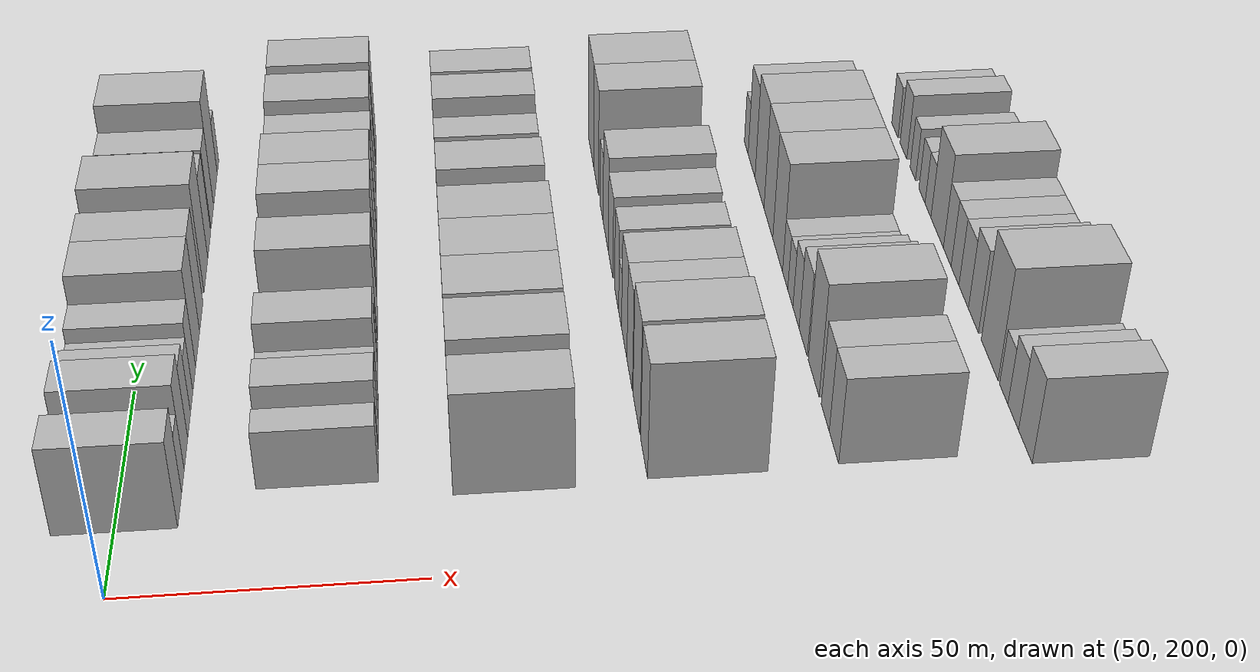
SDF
<sdf version="1.6">
 <world name="default">
  <model name="building_81">
   <static>1</static>
   <pose>50.0000 218.9904 0 0.000000 0.000000 0.000000</pose>
   <link name="link">
    <pose>0 0 9.00 0 0 0</pose>
    <collision name="collision"><geometry><box><size>20.0000 8.2900 18.0000</size></box></geometry></collision>
    <visual name="visual">
     <cast_shadows>0</cast_shadows>
     <geometry><box><size>20.0000 8.2900 18.0000</size></box></geometry>
     <material>
      <script>
       <uri>model://HANNAS_wall/materials/scripts</uri>
       <uri>model://HANNAS_wall/materials/textures</uri>
       <name>vrc/HANNAS_wall</name>
      </script>
     </material>
    </visual>
   </link>
  </model>
  <model name="building_82">
   <static>1</static>
   <pose>50.0000 225.9646 0 0.000000 0.000000 0.000000</pose>
   <link name="link">
    <pose>0 0 6.00 0 0 0</pose>
    <collision name="collision"><geometry><box><size>20.0000 5.6583 12.0000</size></box></geometry></collision>
    <visual name="visual">
     <cast_shadows>0</cast_shadows>
     <geometry><box><size>20.0000 5.6583 12.0000</size></box></geometry>
     <material>
      <script>
       <uri>model://HANNAS_wall/materials/scripts</uri>
       <uri>model://HANNAS_wall/materials/textures</uri>
       <name>vrc/HANNAS_wall</name>
      </script>
     </material>
    </visual>
   </link>
  </model>
  <model name="building_83">
   <static>1</static>
   <pose>50.0000 232.8158 0 0.000000 0.000000 0.000000</pose>
   <link name="link">
    <pose>0 0 9.00 0 0 0</pose>
    <collision name="collision"><geometry><box><size>20.0000 8.0442 18.0000</size></box></geometry></collision>
    <visual name="visual">
     <cast_shadows>0</cast_shadows>
     <geometry><box><size>20.0000 8.0442 18.0000</size></box></geometry>
     <material>
      <script>
       <uri>model://HANNAS_wall/materials/scripts</uri>
       <uri>model://HANNAS_wall/materials/textures</uri>
       <name>vrc/HANNAS_wall</name>
      </script>
     </material>
    </visual>
   </link>
  </model>
  <model name="building_84">
   <static>1</static>
   <pose>50.0000 240.1284 0 0.000000 0.000000 0.000000</pose>
   <link name="link">
    <pose>0 0 7.50 0 0 0</pose>
    <collision name="collision"><geometry><box><size>20.0000 6.5811 15.0000</size></box></geometry></collision>
    <visual name="visual">
     <cast_shadows>0</cast_shadows>
     <geometry><box><size>20.0000 6.5811 15.0000</size></box></geometry>
     <material>
      <script>
       <uri>model://HANNAS_wall/materials/scripts</uri>
       <uri>model://HANNAS_wall/materials/textures</uri>
       <name>vrc/HANNAS_wall</name>
      </script>
     </material>
    </visual>
   </link>
  </model>
  <model name="building_85">
   <static>1</static>
   <pose>50.0000 246.2718 0 0.000000 0.000000 0.000000</pose>
   <link name="link">
    <pose>0 0 6.00 0 0 0</pose>
    <collision name="collision"><geometry><box><size>20.0000 5.7056 12.0000</size></box></geometry></collision>
    <visual name="visual">
     <cast_shadows>0</cast_shadows>
     <geometry><box><size>20.0000 5.7056 12.0000</size></box></geometry>
     <material>
      <script>
       <uri>model://HANNAS_wall/materials/scripts</uri>
       <uri>model://HANNAS_wall/materials/textures</uri>
       <name>vrc/HANNAS_wall</name>
      </script>
     </material>
    </visual>
   </link>
  </model>
  <model name="building_86">
   <static>1</static>
   <pose>50.0000 252.6050 0 0.000000 0.000000 0.000000</pose>
   <link name="link">
    <pose>0 0 7.50 0 0 0</pose>
    <collision name="collision"><geometry><box><size>20.0000 6.9608 15.0000</size></box></geometry></collision>
    <visual name="visual">
     <cast_shadows>0</cast_shadows>
     <geometry><box><size>20.0000 6.9608 15.0000</size></box></geometry>
     <material>
      <script>
       <uri>model://HANNAS_wall/materials/scripts</uri>
       <uri>model://HANNAS_wall/materials/textures</uri>
       <name>vrc/HANNAS_wall</name>
      </script>
     </material>
    </visual>
   </link>
  </model>
  <model name="building_87">
   <static>1</static>
   <pose>50.0000 261.2287 0 0.000000 0.000000 0.000000</pose>
   <link name="link">
    <pose>0 0 10.50 0 0 0</pose>
    <collision name="collision"><geometry><box><size>20.0000 10.2868 21.0000</size></box></geometry></collision>
    <visual name="visual">
     <cast_shadows>0</cast_shadows>
     <geometry><box><size>20.0000 10.2868 21.0000</size></box></geometry>
     <material>
      <script>
       <uri>model://HANNAS_wall/materials/scripts</uri>
       <uri>model://HANNAS_wall/materials/textures</uri>
       <name>vrc/HANNAS_wall</name>
      </script>
     </material>
    </visual>
   </link>
  </model>
  <model name="building_88">
   <static>1</static>
   <pose>50.0000 270.7910 0 0.000000 0.000000 0.000000</pose>
   <link name="link">
    <pose>0 0 10.50 0 0 0</pose>
    <collision name="collision"><geometry><box><size>20.0000 8.8377 21.0000</size></box></geometry></collision>
    <visual name="visual">
     <cast_shadows>0</cast_shadows>
     <geometry><box><size>20.0000 8.8377 21.0000</size></box></geometry>
     <material>
      <script>
       <uri>model://HANNAS_wall/materials/scripts</uri>
       <uri>model://HANNAS_wall/materials/textures</uri>
       <name>vrc/HANNAS_wall</name>
      </script>
     </material>
    </visual>
   </link>
  </model>
  <model name="building_89">
   <static>1</static>
   <pose>50.0000 283.7605 0 0.000000 0.000000 0.000000</pose>
   <link name="link">
    <pose>0 0 12.00 0 0 0</pose>
    <collision name="collision"><geometry><box><size>20.0000 11.1014 24.0000</size></box></geometry></collision>
    <visual name="visual">
     <cast_shadows>0</cast_shadows>
     <geometry><box><size>20.0000 11.1014 24.0000</size></box></geometry>
     <material>
      <script>
       <uri>model://HANNAS_wall/materials/scripts</uri>
       <uri>model://HANNAS_wall/materials/textures</uri>
       <name>vrc/HANNAS_wall</name>
      </script>
     </material>
    </visual>
   </link>
  </model>
  <model name="building_90">
   <static>1</static>
   <pose>50.0000 293.6527 0 0.000000 0.000000 0.000000</pose>
   <link name="link">
    <pose>0 0 9.00 0 0 0</pose>
    <collision name="collision"><geometry><box><size>20.0000 8.6829 18.0000</size></box></geometry></collision>
    <visual name="visual">
     <cast_shadows>0</cast_shadows>
     <geometry><box><size>20.0000 8.6829 18.0000</size></box></geometry>
     <material>
      <script>
       <uri>model://HANNAS_wall/materials/scripts</uri>
       <uri>model://HANNAS_wall/materials/textures</uri>
       <name>vrc/HANNAS_wall</name>
      </script>
     </material>
    </visual>
   </link>
  </model>
  <model name="building_91">
   <static>1</static>
   <pose>50.0000 302.9979 0 0.000000 0.000000 0.000000</pose>
   <link name="link">
    <pose>0 0 9.00 0 0 0</pose>
    <collision name="collision"><geometry><box><size>20.0000 8.0076 18.0000</size></box></geometry></collision>
    <visual name="visual">
     <cast_shadows>0</cast_shadows>
     <geometry><box><size>20.0000 8.0076 18.0000</size></box></geometry>
     <material>
      <script>
       <uri>model://HANNAS_wall/materials/scripts</uri>
       <uri>model://HANNAS_wall/materials/textures</uri>
       <name>vrc/HANNAS_wall</name>
      </script>
     </material>
    </visual>
   </link>
  </model>
  <model name="building_92">
   <static>1</static>
   <pose>50.0000 312.8858 0 0.000000 0.000000 0.000000</pose>
   <link name="link">
    <pose>0 0 12.00 0 0 0</pose>
    <collision name="collision"><geometry><box><size>20.0000 11.7682 24.0000</size></box></geometry></collision>
    <visual name="visual">
     <cast_shadows>0</cast_shadows>
     <geometry><box><size>20.0000 11.7682 24.0000</size></box></geometry>
     <material>
      <script>
       <uri>model://HANNAS_wall/materials/scripts</uri>
       <uri>model://HANNAS_wall/materials/textures</uri>
       <name>vrc/HANNAS_wall</name>
      </script>
     </material>
    </visual>
   </link>
  </model>
  <model name="building_93">
   <static>1</static>
   <pose>50.0000 321.2370 0 0.000000 0.000000 0.000000</pose>
   <link name="link">
    <pose>0 0 6.00 0 0 0</pose>
    <collision name="collision"><geometry><box><size>20.0000 4.9343 12.0000</size></box></geometry></collision>
    <visual name="visual">
     <cast_shadows>0</cast_shadows>
     <geometry><box><size>20.0000 4.9343 12.0000</size></box></geometry>
     <material>
      <script>
       <uri>model://HANNAS_wall/materials/scripts</uri>
       <uri>model://HANNAS_wall/materials/textures</uri>
       <name>vrc/HANNAS_wall</name>
      </script>
     </material>
    </visual>
   </link>
  </model>
  <model name="building_204">
   <static>1</static>
   <pose>82.0000 225.9738 0 0.000000 0.000000 0.000000</pose>
   <link name="link">
    <pose>0 0 6.00 0 0 0</pose>
    <collision name="collision"><geometry><box><size>20.0000 5.9548 12.0000</size></box></geometry></collision>
    <visual name="visual">
     <cast_shadows>0</cast_shadows>
     <geometry><box><size>20.0000 5.9548 12.0000</size></box></geometry>
     <material>
      <script>
       <uri>model://HANNAS_wall/materials/scripts</uri>
       <uri>model://HANNAS_wall/materials/textures</uri>
       <name>vrc/HANNAS_wall</name>
      </script>
     </material>
    </visual>
   </link>
  </model>
  <model name="building_205">
   <static>1</static>
   <pose>82.0000 234.6231 0 0.000000 0.000000 0.000000</pose>
   <link name="link">
    <pose>0 0 7.50 0 0 0</pose>
    <collision name="collision"><geometry><box><size>20.0000 7.3438 15.0000</size></box></geometry></collision>
    <visual name="visual">
     <cast_shadows>0</cast_shadows>
     <geometry><box><size>20.0000 7.3438 15.0000</size></box></geometry>
     <material>
      <script>
       <uri>model://HANNAS_wall/materials/scripts</uri>
       <uri>model://HANNAS_wall/materials/textures</uri>
       <name>vrc/HANNAS_wall</name>
      </script>
     </material>
    </visual>
   </link>
  </model>
  <model name="building_206">
   <static>1</static>
   <pose>82.0000 241.0793 0 0.000000 0.000000 0.000000</pose>
   <link name="link">
    <pose>0 0 6.00 0 0 0</pose>
    <collision name="collision"><geometry><box><size>20.0000 5.5687 12.0000</size></box></geometry></collision>
    <visual name="visual">
     <cast_shadows>0</cast_shadows>
     <geometry><box><size>20.0000 5.5687 12.0000</size></box></geometry>
     <material>
      <script>
       <uri>model://HANNAS_wall/materials/scripts</uri>
       <uri>model://HANNAS_wall/materials/textures</uri>
       <name>vrc/HANNAS_wall</name>
      </script>
     </material>
    </visual>
   </link>
  </model>
  <model name="building_207">
   <static>1</static>
   <pose>82.0000 248.2876 0 0.000000 0.000000 0.000000</pose>
   <link name="link">
    <pose>0 0 9.00 0 0 0</pose>
    <collision name="collision"><geometry><box><size>20.0000 8.8478 18.0000</size></box></geometry></collision>
    <visual name="visual">
     <cast_shadows>0</cast_shadows>
     <geometry><box><size>20.0000 8.8478 18.0000</size></box></geometry>
     <material>
      <script>
       <uri>model://HANNAS_wall/materials/scripts</uri>
       <uri>model://HANNAS_wall/materials/textures</uri>
       <name>vrc/HANNAS_wall</name>
      </script>
     </material>
    </visual>
   </link>
  </model>
  <model name="building_208">
   <static>1</static>
   <pose>82.0000 256.2721 0 0.000000 0.000000 0.000000</pose>
   <link name="link">
    <pose>0 0 6.00 0 0 0</pose>
    <collision name="collision"><geometry><box><size>20.0000 5.1213 12.0000</size></box></geometry></collision>
    <visual name="visual">
     <cast_shadows>0</cast_shadows>
     <geometry><box><size>20.0000 5.1213 12.0000</size></box></geometry>
     <material>
      <script>
       <uri>model://HANNAS_wall/materials/scripts</uri>
       <uri>model://HANNAS_wall/materials/textures</uri>
       <name>vrc/HANNAS_wall</name>
      </script>
     </material>
    </visual>
   </link>
  </model>
  <model name="building_209">
   <static>1</static>
   <pose>82.0000 265.8972 0 0.000000 0.000000 0.000000</pose>
   <link name="link">
    <pose>0 0 10.50 0 0 0</pose>
    <collision name="collision"><geometry><box><size>20.0000 10.1289 21.0000</size></box></geometry></collision>
    <visual name="visual">
     <cast_shadows>0</cast_shadows>
     <geometry><box><size>20.0000 10.1289 21.0000</size></box></geometry>
     <material>
      <script>
       <uri>model://HANNAS_wall/materials/scripts</uri>
       <uri>model://HANNAS_wall/materials/textures</uri>
       <name>vrc/HANNAS_wall</name>
      </script>
     </material>
    </visual>
   </link>
  </model>
  <model name="building_210">
   <static>1</static>
   <pose>82.0000 278.8341 0 0.000000 0.000000 0.000000</pose>
   <link name="link">
    <pose>0 0 12.00 0 0 0</pose>
    <collision name="collision"><geometry><box><size>20.0000 9.7449 24.0000</size></box></geometry></collision>
    <visual name="visual">
     <cast_shadows>0</cast_shadows>
     <geometry><box><size>20.0000 9.7449 24.0000</size></box></geometry>
     <material>
      <script>
       <uri>model://HANNAS_wall/materials/scripts</uri>
       <uri>model://HANNAS_wall/materials/textures</uri>
       <name>vrc/HANNAS_wall</name>
      </script>
     </material>
    </visual>
   </link>
  </model>
  <model name="building_211">
   <static>1</static>
   <pose>82.0000 288.9552 0 0.000000 0.000000 0.000000</pose>
   <link name="link">
    <pose>0 0 12.00 0 0 0</pose>
    <collision name="collision"><geometry><box><size>20.0000 10.4972 24.0000</size></box></geometry></collision>
    <visual name="visual">
     <cast_shadows>0</cast_shadows>
     <geometry><box><size>20.0000 10.4972 24.0000</size></box></geometry>
     <material>
      <script>
       <uri>model://HANNAS_wall/materials/scripts</uri>
       <uri>model://HANNAS_wall/materials/textures</uri>
       <name>vrc/HANNAS_wall</name>
      </script>
     </material>
    </visual>
   </link>
  </model>
  <model name="building_212">
   <static>1</static>
   <pose>82.0000 300.4500 0 0.000000 0.000000 0.000000</pose>
   <link name="link">
    <pose>0 0 10.50 0 0 0</pose>
    <collision name="collision"><geometry><box><size>20.0000 10.4925 21.0000</size></box></geometry></collision>
    <visual name="visual">
     <cast_shadows>0</cast_shadows>
     <geometry><box><size>20.0000 10.4925 21.0000</size></box></geometry>
     <material>
      <script>
       <uri>model://HANNAS_wall/materials/scripts</uri>
       <uri>model://HANNAS_wall/materials/textures</uri>
       <name>vrc/HANNAS_wall</name>
      </script>
     </material>
    </visual>
   </link>
  </model>
  <model name="building_213">
   <static>1</static>
   <pose>82.0000 310.8779 0 0.000000 0.000000 0.000000</pose>
   <link name="link">
    <pose>0 0 12.00 0 0 0</pose>
    <collision name="collision"><geometry><box><size>20.0000 10.3632 24.0000</size></box></geometry></collision>
    <visual name="visual">
     <cast_shadows>0</cast_shadows>
     <geometry><box><size>20.0000 10.3632 24.0000</size></box></geometry>
     <material>
      <script>
       <uri>model://HANNAS_wall/materials/scripts</uri>
       <uri>model://HANNAS_wall/materials/textures</uri>
       <name>vrc/HANNAS_wall</name>
      </script>
     </material>
    </visual>
   </link>
  </model>
  <model name="building_214">
   <static>1</static>
   <pose>82.0000 324.3219 0 0.000000 0.000000 0.000000</pose>
   <link name="link">
    <pose>0 0 12.00 0 0 0</pose>
    <collision name="collision"><geometry><box><size>20.0000 10.5250 24.0000</size></box></geometry></collision>
    <visual name="visual">
     <cast_shadows>0</cast_shadows>
     <geometry><box><size>20.0000 10.5250 24.0000</size></box></geometry>
     <material>
      <script>
       <uri>model://HANNAS_wall/materials/scripts</uri>
       <uri>model://HANNAS_wall/materials/textures</uri>
       <name>vrc/HANNAS_wall</name>
      </script>
     </material>
    </visual>
   </link>
  </model>
  <model name="building_328">
   <static>1</static>
   <pose>114.0000 223.7755 0 0.000000 0.000000 0.000000</pose>
   <link name="link">
    <pose>0 0 10.50 0 0 0</pose>
    <collision name="collision"><geometry><box><size>20.0000 10.0920 21.0000</size></box></geometry></collision>
    <visual name="visual">
     <cast_shadows>0</cast_shadows>
     <geometry><box><size>20.0000 10.0920 21.0000</size></box></geometry>
     <material>
      <script>
       <uri>model://HANNAS_wall/materials/scripts</uri>
       <uri>model://HANNAS_wall/materials/textures</uri>
       <name>vrc/HANNAS_wall</name>
      </script>
     </material>
    </visual>
   </link>
  </model>
  <model name="building_329">
   <static>1</static>
   <pose>114.0000 234.5067 0 0.000000 0.000000 0.000000</pose>
   <link name="link">
    <pose>0 0 12.00 0 0 0</pose>
    <collision name="collision"><geometry><box><size>20.0000 11.3704 24.0000</size></box></geometry></collision>
    <visual name="visual">
     <cast_shadows>0</cast_shadows>
     <geometry><box><size>20.0000 11.3704 24.0000</size></box></geometry>
     <material>
      <script>
       <uri>model://HANNAS_wall/materials/scripts</uri>
       <uri>model://HANNAS_wall/materials/textures</uri>
       <name>vrc/HANNAS_wall</name>
      </script>
     </material>
    </visual>
   </link>
  </model>
  <model name="building_330">
   <static>1</static>
   <pose>114.0000 246.7036 0 0.000000 0.000000 0.000000</pose>
   <link name="link">
    <pose>0 0 12.00 0 0 0</pose>
    <collision name="collision"><geometry><box><size>20.0000 11.0233 24.0000</size></box></geometry></collision>
    <visual name="visual">
     <cast_shadows>0</cast_shadows>
     <geometry><box><size>20.0000 11.0233 24.0000</size></box></geometry>
     <material>
      <script>
       <uri>model://HANNAS_wall/materials/scripts</uri>
       <uri>model://HANNAS_wall/materials/textures</uri>
       <name>vrc/HANNAS_wall</name>
      </script>
     </material>
    </visual>
   </link>
  </model>
  <model name="building_331">
   <static>1</static>
   <pose>114.0000 257.8045 0 0.000000 0.000000 0.000000</pose>
   <link name="link">
    <pose>0 0 12.00 0 0 0</pose>
    <collision name="collision"><geometry><box><size>20.0000 11.1785 24.0000</size></box></geometry></collision>
    <visual name="visual">
     <cast_shadows>0</cast_shadows>
     <geometry><box><size>20.0000 11.1785 24.0000</size></box></geometry>
     <material>
      <script>
       <uri>model://HANNAS_wall/materials/scripts</uri>
       <uri>model://HANNAS_wall/materials/textures</uri>
       <name>vrc/HANNAS_wall</name>
      </script>
     </material>
    </visual>
   </link>
  </model>
  <model name="building_332">
   <static>1</static>
   <pose>114.0000 268.5747 0 0.000000 0.000000 0.000000</pose>
   <link name="link">
    <pose>0 0 12.00 0 0 0</pose>
    <collision name="collision"><geometry><box><size>20.0000 10.3620 24.0000</size></box></geometry></collision>
    <visual name="visual">
     <cast_shadows>0</cast_shadows>
     <geometry><box><size>20.0000 10.3620 24.0000</size></box></geometry>
     <material>
      <script>
       <uri>model://HANNAS_wall/materials/scripts</uri>
       <uri>model://HANNAS_wall/materials/textures</uri>
       <name>vrc/HANNAS_wall</name>
      </script>
     </material>
    </visual>
   </link>
  </model>
  <model name="building_333">
   <static>1</static>
   <pose>114.0000 280.1764 0 0.000000 0.000000 0.000000</pose>
   <link name="link">
    <pose>0 0 7.50 0 0 0</pose>
    <collision name="collision"><geometry><box><size>20.0000 6.8414 15.0000</size></box></geometry></collision>
    <visual name="visual">
     <cast_shadows>0</cast_shadows>
     <geometry><box><size>20.0000 6.8414 15.0000</size></box></geometry>
     <material>
      <script>
       <uri>model://HANNAS_wall/materials/scripts</uri>
       <uri>model://HANNAS_wall/materials/textures</uri>
       <name>vrc/HANNAS_wall</name>
      </script>
     </material>
    </visual>
   </link>
  </model>
  <model name="building_334">
   <static>1</static>
   <pose>114.0000 288.4696 0 0.000000 0.000000 0.000000</pose>
   <link name="link">
    <pose>0 0 10.50 0 0 0</pose>
    <collision name="collision"><geometry><box><size>20.0000 9.7451 21.0000</size></box></geometry></collision>
    <visual name="visual">
     <cast_shadows>0</cast_shadows>
     <geometry><box><size>20.0000 9.7451 21.0000</size></box></geometry>
     <material>
      <script>
       <uri>model://HANNAS_wall/materials/scripts</uri>
       <uri>model://HANNAS_wall/materials/textures</uri>
       <name>vrc/HANNAS_wall</name>
      </script>
     </material>
    </visual>
   </link>
  </model>
  <model name="building_335">
   <static>1</static>
   <pose>114.0000 296.4511 0 0.000000 0.000000 0.000000</pose>
   <link name="link">
    <pose>0 0 7.50 0 0 0</pose>
    <collision name="collision"><geometry><box><size>20.0000 6.2179 15.0000</size></box></geometry></collision>
    <visual name="visual">
     <cast_shadows>0</cast_shadows>
     <geometry><box><size>20.0000 6.2179 15.0000</size></box></geometry>
     <material>
      <script>
       <uri>model://HANNAS_wall/materials/scripts</uri>
       <uri>model://HANNAS_wall/materials/textures</uri>
       <name>vrc/HANNAS_wall</name>
      </script>
     </material>
    </visual>
   </link>
  </model>
  <model name="building_336">
   <static>1</static>
   <pose>114.0000 303.2554 0 0.000000 0.000000 0.000000</pose>
   <link name="link">
    <pose>0 0 9.00 0 0 0</pose>
    <collision name="collision"><geometry><box><size>20.0000 7.3907 18.0000</size></box></geometry></collision>
    <visual name="visual">
     <cast_shadows>0</cast_shadows>
     <geometry><box><size>20.0000 7.3907 18.0000</size></box></geometry>
     <material>
      <script>
       <uri>model://HANNAS_wall/materials/scripts</uri>
       <uri>model://HANNAS_wall/materials/textures</uri>
       <name>vrc/HANNAS_wall</name>
      </script>
     </material>
    </visual>
   </link>
  </model>
  <model name="building_337">
   <static>1</static>
   <pose>114.0000 313.5395 0 0.000000 0.000000 0.000000</pose>
   <link name="link">
    <pose>0 0 10.50 0 0 0</pose>
    <collision name="collision"><geometry><box><size>20.0000 9.1775 21.0000</size></box></geometry></collision>
    <visual name="visual">
     <cast_shadows>0</cast_shadows>
     <geometry><box><size>20.0000 9.1775 21.0000</size></box></geometry>
     <material>
      <script>
       <uri>model://HANNAS_wall/materials/scripts</uri>
       <uri>model://HANNAS_wall/materials/textures</uri>
       <name>vrc/HANNAS_wall</name>
      </script>
     </material>
    </visual>
   </link>
  </model>
  <model name="building_338">
   <static>1</static>
   <pose>114.0000 323.4626 0 0.000000 0.000000 0.000000</pose>
   <link name="link">
    <pose>0 0 10.50 0 0 0</pose>
    <collision name="collision"><geometry><box><size>20.0000 8.6687 21.0000</size></box></geometry></collision>
    <visual name="visual">
     <cast_shadows>0</cast_shadows>
     <geometry><box><size>20.0000 8.6687 21.0000</size></box></geometry>
     <material>
      <script>
       <uri>model://HANNAS_wall/materials/scripts</uri>
       <uri>model://HANNAS_wall/materials/textures</uri>
       <name>vrc/HANNAS_wall</name>
      </script>
     </material>
    </visual>
   </link>
  </model>
  <model name="building_449">
   <static>1</static>
   <pose>146.0000 224.8673 0 0.000000 0.000000 0.000000</pose>
   <link name="link">
    <pose>0 0 12.00 0 0 0</pose>
    <collision name="collision"><geometry><box><size>20.0000 10.1038 24.0000</size></box></geometry></collision>
    <visual name="visual">
     <cast_shadows>0</cast_shadows>
     <geometry><box><size>20.0000 10.1038 24.0000</size></box></geometry>
     <material>
      <script>
       <uri>model://HANNAS_wall/materials/scripts</uri>
       <uri>model://HANNAS_wall/materials/textures</uri>
       <name>vrc/HANNAS_wall</name>
      </script>
     </material>
    </visual>
   </link>
  </model>
  <model name="building_450">
   <static>1</static>
   <pose>146.0000 236.2912 0 0.000000 0.000000 0.000000</pose>
   <link name="link">
    <pose>0 0 12.00 0 0 0</pose>
    <collision name="collision"><geometry><box><size>20.0000 10.7440 24.0000</size></box></geometry></collision>
    <visual name="visual">
     <cast_shadows>0</cast_shadows>
     <geometry><box><size>20.0000 10.7440 24.0000</size></box></geometry>
     <material>
      <script>
       <uri>model://HANNAS_wall/materials/scripts</uri>
       <uri>model://HANNAS_wall/materials/textures</uri>
       <name>vrc/HANNAS_wall</name>
      </script>
     </material>
    </visual>
   </link>
  </model>
  <model name="building_451">
   <static>1</static>
   <pose>146.0000 247.0804 0 0.000000 0.000000 0.000000</pose>
   <link name="link">
    <pose>0 0 10.50 0 0 0</pose>
    <collision name="collision"><geometry><box><size>20.0000 8.8344 21.0000</size></box></geometry></collision>
    <visual name="visual">
     <cast_shadows>0</cast_shadows>
     <geometry><box><size>20.0000 8.8344 21.0000</size></box></geometry>
     <material>
      <script>
       <uri>model://HANNAS_wall/materials/scripts</uri>
       <uri>model://HANNAS_wall/materials/textures</uri>
       <name>vrc/HANNAS_wall</name>
      </script>
     </material>
    </visual>
   </link>
  </model>
  <model name="building_452">
   <static>1</static>
   <pose>146.0000 256.0365 0 0.000000 0.000000 0.000000</pose>
   <link name="link">
    <pose>0 0 10.50 0 0 0</pose>
    <collision name="collision"><geometry><box><size>20.0000 9.0777 21.0000</size></box></geometry></collision>
    <visual name="visual">
     <cast_shadows>0</cast_shadows>
     <geometry><box><size>20.0000 9.0777 21.0000</size></box></geometry>
     <material>
      <script>
       <uri>model://HANNAS_wall/materials/scripts</uri>
       <uri>model://HANNAS_wall/materials/textures</uri>
       <name>vrc/HANNAS_wall</name>
      </script>
     </material>
    </visual>
   </link>
  </model>
  <model name="building_453">
   <static>1</static>
   <pose>146.0000 263.1099 0 0.000000 0.000000 0.000000</pose>
   <link name="link">
    <pose>0 0 6.00 0 0 0</pose>
    <collision name="collision"><geometry><box><size>20.0000 5.0691 12.0000</size></box></geometry></collision>
    <visual name="visual">
     <cast_shadows>0</cast_shadows>
     <geometry><box><size>20.0000 5.0691 12.0000</size></box></geometry>
     <material>
      <script>
       <uri>model://HANNAS_wall/materials/scripts</uri>
       <uri>model://HANNAS_wall/materials/textures</uri>
       <name>vrc/HANNAS_wall</name>
      </script>
     </material>
    </visual>
   </link>
  </model>
  <model name="building_454">
   <static>1</static>
   <pose>146.0000 269.3470 0 0.000000 0.000000 0.000000</pose>
   <link name="link">
    <pose>0 0 9.00 0 0 0</pose>
    <collision name="collision"><geometry><box><size>20.0000 7.4052 18.0000</size></box></geometry></collision>
    <visual name="visual">
     <cast_shadows>0</cast_shadows>
     <geometry><box><size>20.0000 7.4052 18.0000</size></box></geometry>
     <material>
      <script>
       <uri>model://HANNAS_wall/materials/scripts</uri>
       <uri>model://HANNAS_wall/materials/textures</uri>
       <name>vrc/HANNAS_wall</name>
      </script>
     </material>
    </visual>
   </link>
  </model>
  <model name="building_455">
   <static>1</static>
   <pose>146.0000 280.3539 0 0.000000 0.000000 0.000000</pose>
   <link name="link">
    <pose>0 0 9.00 0 0 0</pose>
    <collision name="collision"><geometry><box><size>20.0000 8.6086 18.0000</size></box></geometry></collision>
    <visual name="visual">
     <cast_shadows>0</cast_shadows>
     <geometry><box><size>20.0000 8.6086 18.0000</size></box></geometry>
     <material>
      <script>
       <uri>model://HANNAS_wall/materials/scripts</uri>
       <uri>model://HANNAS_wall/materials/textures</uri>
       <name>vrc/HANNAS_wall</name>
      </script>
     </material>
    </visual>
   </link>
  </model>
  <model name="building_456">
   <static>1</static>
   <pose>146.0000 289.6910 0 0.000000 0.000000 0.000000</pose>
   <link name="link">
    <pose>0 0 10.50 0 0 0</pose>
    <collision name="collision"><geometry><box><size>20.0000 10.0656 21.0000</size></box></geometry></collision>
    <visual name="visual">
     <cast_shadows>0</cast_shadows>
     <geometry><box><size>20.0000 10.0656 21.0000</size></box></geometry>
     <material>
      <script>
       <uri>model://HANNAS_wall/materials/scripts</uri>
       <uri>model://HANNAS_wall/materials/textures</uri>
       <name>vrc/HANNAS_wall</name>
      </script>
     </material>
    </visual>
   </link>
  </model>
  <model name="building_457">
   <static>1</static>
   <pose>146.0000 297.9142 0 0.000000 0.000000 0.000000</pose>
   <link name="link">
    <pose>0 0 7.50 0 0 0</pose>
    <collision name="collision"><geometry><box><size>20.0000 6.3807 15.0000</size></box></geometry></collision>
    <visual name="visual">
     <cast_shadows>0</cast_shadows>
     <geometry><box><size>20.0000 6.3807 15.0000</size></box></geometry>
     <material>
      <script>
       <uri>model://HANNAS_wall/materials/scripts</uri>
       <uri>model://HANNAS_wall/materials/textures</uri>
       <name>vrc/HANNAS_wall</name>
      </script>
     </material>
    </visual>
   </link>
  </model>
  <model name="building_458">
   <static>1</static>
   <pose>146.0000 309.2014 0 0.000000 0.000000 0.000000</pose>
   <link name="link">
    <pose>0 0 12.00 0 0 0</pose>
    <collision name="collision"><geometry><box><size>20.0000 10.1937 24.0000</size></box></geometry></collision>
    <visual name="visual">
     <cast_shadows>0</cast_shadows>
     <geometry><box><size>20.0000 10.1937 24.0000</size></box></geometry>
     <material>
      <script>
       <uri>model://HANNAS_wall/materials/scripts</uri>
       <uri>model://HANNAS_wall/materials/textures</uri>
       <name>vrc/HANNAS_wall</name>
      </script>
     </material>
    </visual>
   </link>
  </model>
  <model name="building_459">
   <static>1</static>
   <pose>146.0000 320.2354 0 0.000000 0.000000 0.000000</pose>
   <link name="link">
    <pose>0 0 12.00 0 0 0</pose>
    <collision name="collision"><geometry><box><size>20.0000 11.8744 24.0000</size></box></geometry></collision>
    <visual name="visual">
     <cast_shadows>0</cast_shadows>
     <geometry><box><size>20.0000 11.8744 24.0000</size></box></geometry>
     <material>
      <script>
       <uri>model://HANNAS_wall/materials/scripts</uri>
       <uri>model://HANNAS_wall/materials/textures</uri>
       <name>vrc/HANNAS_wall</name>
      </script>
     </material>
    </visual>
   </link>
  </model>
  <model name="building_569">
   <static>1</static>
   <pose>178.0000 224.7613 0 0.000000 0.000000 0.000000</pose>
   <link name="link">
    <pose>0 0 9.00 0 0 0</pose>
    <collision name="collision"><geometry><box><size>20.0000 8.2444 18.0000</size></box></geometry></collision>
    <visual name="visual">
     <cast_shadows>0</cast_shadows>
     <geometry><box><size>20.0000 8.2444 18.0000</size></box></geometry>
     <material>
      <script>
       <uri>model://HANNAS_wall/materials/scripts</uri>
       <uri>model://HANNAS_wall/materials/textures</uri>
       <name>vrc/HANNAS_wall</name>
      </script>
     </material>
    </visual>
   </link>
  </model>
  <model name="building_570">
   <static>1</static>
   <pose>178.0000 232.4956 0 0.000000 0.000000 0.000000</pose>
   <link name="link">
    <pose>0 0 9.00 0 0 0</pose>
    <collision name="collision"><geometry><box><size>20.0000 7.2243 18.0000</size></box></geometry></collision>
    <visual name="visual">
     <cast_shadows>0</cast_shadows>
     <geometry><box><size>20.0000 7.2243 18.0000</size></box></geometry>
     <material>
      <script>
       <uri>model://HANNAS_wall/materials/scripts</uri>
       <uri>model://HANNAS_wall/materials/textures</uri>
       <name>vrc/HANNAS_wall</name>
      </script>
     </material>
    </visual>
   </link>
  </model>
  <model name="building_571">
   <static>1</static>
   <pose>178.0000 243.2600 0 0.000000 0.000000 0.000000</pose>
   <link name="link">
    <pose>0 0 12.00 0 0 0</pose>
    <collision name="collision"><geometry><box><size>20.0000 10.3045 24.0000</size></box></geometry></collision>
    <visual name="visual">
     <cast_shadows>0</cast_shadows>
     <geometry><box><size>20.0000 10.3045 24.0000</size></box></geometry>
     <material>
      <script>
       <uri>model://HANNAS_wall/materials/scripts</uri>
       <uri>model://HANNAS_wall/materials/textures</uri>
       <name>vrc/HANNAS_wall</name>
      </script>
     </material>
    </visual>
   </link>
  </model>
  <model name="building_572">
   <static>1</static>
   <pose>178.0000 253.5100 0 0.000000 0.000000 0.000000</pose>
   <link name="link">
    <pose>0 0 9.00 0 0 0</pose>
    <collision name="collision"><geometry><box><size>20.0000 8.1955 18.0000</size></box></geometry></collision>
    <visual name="visual">
     <cast_shadows>0</cast_shadows>
     <geometry><box><size>20.0000 8.1955 18.0000</size></box></geometry>
     <material>
      <script>
       <uri>model://HANNAS_wall/materials/scripts</uri>
       <uri>model://HANNAS_wall/materials/textures</uri>
       <name>vrc/HANNAS_wall</name>
      </script>
     </material>
    </visual>
   </link>
  </model>
  <model name="building_573">
   <static>1</static>
   <pose>178.0000 260.7982 0 0.000000 0.000000 0.000000</pose>
   <link name="link">
    <pose>0 0 7.50 0 0 0</pose>
    <collision name="collision"><geometry><box><size>20.0000 6.3810 15.0000</size></box></geometry></collision>
    <visual name="visual">
     <cast_shadows>0</cast_shadows>
     <geometry><box><size>20.0000 6.3810 15.0000</size></box></geometry>
     <material>
      <script>
       <uri>model://HANNAS_wall/materials/scripts</uri>
       <uri>model://HANNAS_wall/materials/textures</uri>
       <name>vrc/HANNAS_wall</name>
      </script>
     </material>
    </visual>
   </link>
  </model>
  <model name="building_574">
   <static>1</static>
   <pose>178.0000 266.7149 0 0.000000 0.000000 0.000000</pose>
   <link name="link">
    <pose>0 0 6.00 0 0 0</pose>
    <collision name="collision"><geometry><box><size>20.0000 5.4524 12.0000</size></box></geometry></collision>
    <visual name="visual">
     <cast_shadows>0</cast_shadows>
     <geometry><box><size>20.0000 5.4524 12.0000</size></box></geometry>
     <material>
      <script>
       <uri>model://HANNAS_wall/materials/scripts</uri>
       <uri>model://HANNAS_wall/materials/textures</uri>
       <name>vrc/HANNAS_wall</name>
      </script>
     </material>
    </visual>
   </link>
  </model>
  <model name="building_575">
   <static>1</static>
   <pose>178.0000 272.2664 0 0.000000 0.000000 0.000000</pose>
   <link name="link">
    <pose>0 0 6.00 0 0 0</pose>
    <collision name="collision"><geometry><box><size>20.0000 5.6504 12.0000</size></box></geometry></collision>
    <visual name="visual">
     <cast_shadows>0</cast_shadows>
     <geometry><box><size>20.0000 5.6504 12.0000</size></box></geometry>
     <material>
      <script>
       <uri>model://HANNAS_wall/materials/scripts</uri>
       <uri>model://HANNAS_wall/materials/textures</uri>
       <name>vrc/HANNAS_wall</name>
      </script>
     </material>
    </visual>
   </link>
  </model>
  <model name="building_576">
   <static>1</static>
   <pose>178.0000 280.5878 0 0.000000 0.000000 0.000000</pose>
   <link name="link">
    <pose>0 0 12.00 0 0 0</pose>
    <collision name="collision"><geometry><box><size>20.0000 10.9925 24.0000</size></box></geometry></collision>
    <visual name="visual">
     <cast_shadows>0</cast_shadows>
     <geometry><box><size>20.0000 10.9925 24.0000</size></box></geometry>
     <material>
      <script>
       <uri>model://HANNAS_wall/materials/scripts</uri>
       <uri>model://HANNAS_wall/materials/textures</uri>
       <name>vrc/HANNAS_wall</name>
      </script>
     </material>
    </visual>
   </link>
  </model>
  <model name="building_577">
   <static>1</static>
   <pose>178.0000 291.2842 0 0.000000 0.000000 0.000000</pose>
   <link name="link">
    <pose>0 0 12.00 0 0 0</pose>
    <collision name="collision"><geometry><box><size>20.0000 10.4002 24.0000</size></box></geometry></collision>
    <visual name="visual">
     <cast_shadows>0</cast_shadows>
     <geometry><box><size>20.0000 10.4002 24.0000</size></box></geometry>
     <material>
      <script>
       <uri>model://HANNAS_wall/materials/scripts</uri>
       <uri>model://HANNAS_wall/materials/textures</uri>
       <name>vrc/HANNAS_wall</name>
      </script>
     </material>
    </visual>
   </link>
  </model>
  <model name="building_578">
   <static>1</static>
   <pose>178.0000 301.9977 0 0.000000 0.000000 0.000000</pose>
   <link name="link">
    <pose>0 0 12.00 0 0 0</pose>
    <collision name="collision"><geometry><box><size>20.0000 11.0267 24.0000</size></box></geometry></collision>
    <visual name="visual">
     <cast_shadows>0</cast_shadows>
     <geometry><box><size>20.0000 11.0267 24.0000</size></box></geometry>
     <material>
      <script>
       <uri>model://HANNAS_wall/materials/scripts</uri>
       <uri>model://HANNAS_wall/materials/textures</uri>
       <name>vrc/HANNAS_wall</name>
      </script>
     </material>
    </visual>
   </link>
  </model>
  <model name="building_579">
   <static>1</static>
   <pose>178.0000 311.9235 0 0.000000 0.000000 0.000000</pose>
   <link name="link">
    <pose>0 0 10.50 0 0 0</pose>
    <collision name="collision"><geometry><box><size>20.0000 8.8249 21.0000</size></box></geometry></collision>
    <visual name="visual">
     <cast_shadows>0</cast_shadows>
     <geometry><box><size>20.0000 8.8249 21.0000</size></box></geometry>
     <material>
      <script>
       <uri>model://HANNAS_wall/materials/scripts</uri>
       <uri>model://HANNAS_wall/materials/textures</uri>
       <name>vrc/HANNAS_wall</name>
      </script>
     </material>
    </visual>
   </link>
  </model>
  <model name="building_580">
   <static>1</static>
   <pose>178.0000 318.8010 0 0.000000 0.000000 0.000000</pose>
   <link name="link">
    <pose>0 0 6.00 0 0 0</pose>
    <collision name="collision"><geometry><box><size>20.0000 4.9300 12.0000</size></box></geometry></collision>
    <visual name="visual">
     <cast_shadows>0</cast_shadows>
     <geometry><box><size>20.0000 4.9300 12.0000</size></box></geometry>
     <material>
      <script>
       <uri>model://HANNAS_wall/materials/scripts</uri>
       <uri>model://HANNAS_wall/materials/textures</uri>
       <name>vrc/HANNAS_wall</name>
      </script>
     </material>
    </visual>
   </link>
  </model>
  <model name="building_683">
   <static>1</static>
   <pose>210.0000 222.0986 0 0.000000 0.000000 0.000000</pose>
   <link name="link">
    <pose>0 0 9.00 0 0 0</pose>
    <collision name="collision"><geometry><box><size>20.0000 8.5012 18.0000</size></box></geometry></collision>
    <visual name="visual">
     <cast_shadows>0</cast_shadows>
     <geometry><box><size>20.0000 8.5012 18.0000</size></box></geometry>
     <material>
      <script>
       <uri>model://HANNAS_wall/materials/scripts</uri>
       <uri>model://HANNAS_wall/materials/textures</uri>
       <name>vrc/HANNAS_wall</name>
      </script>
     </material>
    </visual>
   </link>
  </model>
  <model name="building_684">
   <static>1</static>
   <pose>210.0000 229.7634 0 0.000000 0.000000 0.000000</pose>
   <link name="link">
    <pose>0 0 7.50 0 0 0</pose>
    <collision name="collision"><geometry><box><size>20.0000 6.8284 15.0000</size></box></geometry></collision>
    <visual name="visual">
     <cast_shadows>0</cast_shadows>
     <geometry><box><size>20.0000 6.8284 15.0000</size></box></geometry>
     <material>
      <script>
       <uri>model://HANNAS_wall/materials/scripts</uri>
       <uri>model://HANNAS_wall/materials/textures</uri>
       <name>vrc/HANNAS_wall</name>
      </script>
     </material>
    </visual>
   </link>
  </model>
  <model name="building_685">
   <static>1</static>
   <pose>210.0000 235.9402 0 0.000000 0.000000 0.000000</pose>
   <link name="link">
    <pose>0 0 6.00 0 0 0</pose>
    <collision name="collision"><geometry><box><size>20.0000 5.5252 12.0000</size></box></geometry></collision>
    <visual name="visual">
     <cast_shadows>0</cast_shadows>
     <geometry><box><size>20.0000 5.5252 12.0000</size></box></geometry>
     <material>
      <script>
       <uri>model://HANNAS_wall/materials/scripts</uri>
       <uri>model://HANNAS_wall/materials/textures</uri>
       <name>vrc/HANNAS_wall</name>
      </script>
     </material>
    </visual>
   </link>
  </model>
  <model name="building_686">
   <static>1</static>
   <pose>210.0000 245.5305 0 0.000000 0.000000 0.000000</pose>
   <link name="link">
    <pose>0 0 12.00 0 0 0</pose>
    <collision name="collision"><geometry><box><size>20.0000 11.6554 24.0000</size></box></geometry></collision>
    <visual name="visual">
     <cast_shadows>0</cast_shadows>
     <geometry><box><size>20.0000 11.6554 24.0000</size></box></geometry>
     <material>
      <script>
       <uri>model://HANNAS_wall/materials/scripts</uri>
       <uri>model://HANNAS_wall/materials/textures</uri>
       <name>vrc/HANNAS_wall</name>
      </script>
     </material>
    </visual>
   </link>
  </model>
  <model name="building_687">
   <static>1</static>
   <pose>210.0000 257.0419 0 0.000000 0.000000 0.000000</pose>
   <link name="link">
    <pose>0 0 9.00 0 0 0</pose>
    <collision name="collision"><geometry><box><size>20.0000 7.3674 18.0000</size></box></geometry></collision>
    <visual name="visual">
     <cast_shadows>0</cast_shadows>
     <geometry><box><size>20.0000 7.3674 18.0000</size></box></geometry>
     <material>
      <script>
       <uri>model://HANNAS_wall/materials/scripts</uri>
       <uri>model://HANNAS_wall/materials/textures</uri>
       <name>vrc/HANNAS_wall</name>
      </script>
     </material>
    </visual>
   </link>
  </model>
  <model name="building_688">
   <static>1</static>
   <pose>210.0000 264.2993 0 0.000000 0.000000 0.000000</pose>
   <link name="link">
    <pose>0 0 7.50 0 0 0</pose>
    <collision name="collision"><geometry><box><size>20.0000 7.1473 15.0000</size></box></geometry></collision>
    <visual name="visual">
     <cast_shadows>0</cast_shadows>
     <geometry><box><size>20.0000 7.1473 15.0000</size></box></geometry>
     <material>
      <script>
       <uri>model://HANNAS_wall/materials/scripts</uri>
       <uri>model://HANNAS_wall/materials/textures</uri>
       <name>vrc/HANNAS_wall</name>
      </script>
     </material>
    </visual>
   </link>
  </model>
  <model name="building_689">
   <static>1</static>
   <pose>210.0000 270.9013 0 0.000000 0.000000 0.000000</pose>
   <link name="link">
    <pose>0 0 7.50 0 0 0</pose>
    <collision name="collision"><geometry><box><size>20.0000 6.0568 15.0000</size></box></geometry></collision>
    <visual name="visual">
     <cast_shadows>0</cast_shadows>
     <geometry><box><size>20.0000 6.0568 15.0000</size></box></geometry>
     <material>
      <script>
       <uri>model://HANNAS_wall/materials/scripts</uri>
       <uri>model://HANNAS_wall/materials/textures</uri>
       <name>vrc/HANNAS_wall</name>
      </script>
     </material>
    </visual>
   </link>
  </model>
  <model name="building_690">
   <static>1</static>
   <pose>210.0000 277.0077 0 0.000000 0.000000 0.000000</pose>
   <link name="link">
    <pose>0 0 7.50 0 0 0</pose>
    <collision name="collision"><geometry><box><size>20.0000 6.1560 15.0000</size></box></geometry></collision>
    <visual name="visual">
     <cast_shadows>0</cast_shadows>
     <geometry><box><size>20.0000 6.1560 15.0000</size></box></geometry>
     <material>
      <script>
       <uri>model://HANNAS_wall/materials/scripts</uri>
       <uri>model://HANNAS_wall/materials/textures</uri>
       <name>vrc/HANNAS_wall</name>
      </script>
     </material>
    </visual>
   </link>
  </model>
  <model name="building_691">
   <static>1</static>
   <pose>210.0000 285.2488 0 0.000000 0.000000 0.000000</pose>
   <link name="link">
    <pose>0 0 10.50 0 0 0</pose>
    <collision name="collision"><geometry><box><size>20.0000 10.3263 21.0000</size></box></geometry></collision>
    <visual name="visual">
     <cast_shadows>0</cast_shadows>
     <geometry><box><size>20.0000 10.3263 21.0000</size></box></geometry>
     <material>
      <script>
       <uri>model://HANNAS_wall/materials/scripts</uri>
       <uri>model://HANNAS_wall/materials/textures</uri>
       <name>vrc/HANNAS_wall</name>
      </script>
     </material>
    </visual>
   </link>
  </model>
  <model name="building_692">
   <static>1</static>
   <pose>210.0000 292.9061 0 0.000000 0.000000 0.000000</pose>
   <link name="link">
    <pose>0 0 6.00 0 0 0</pose>
    <collision name="collision"><geometry><box><size>20.0000 4.9881 12.0000</size></box></geometry></collision>
    <visual name="visual">
     <cast_shadows>0</cast_shadows>
     <geometry><box><size>20.0000 4.9881 12.0000</size></box></geometry>
     <material>
      <script>
       <uri>model://HANNAS_wall/materials/scripts</uri>
       <uri>model://HANNAS_wall/materials/textures</uri>
       <name>vrc/HANNAS_wall</name>
      </script>
     </material>
    </visual>
   </link>
  </model>
  <model name="building_693">
   <static>1</static>
   <pose>210.0000 298.0745 0 0.000000 0.000000 0.000000</pose>
   <link name="link">
    <pose>0 0 6.00 0 0 0</pose>
    <collision name="collision"><geometry><box><size>20.0000 5.3489 12.0000</size></box></geometry></collision>
    <visual name="visual">
     <cast_shadows>0</cast_shadows>
     <geometry><box><size>20.0000 5.3489 12.0000</size></box></geometry>
     <material>
      <script>
       <uri>model://HANNAS_wall/materials/scripts</uri>
       <uri>model://HANNAS_wall/materials/textures</uri>
       <name>vrc/HANNAS_wall</name>
      </script>
     </material>
    </visual>
   </link>
  </model>
  <model name="building_694">
   <static>1</static>
   <pose>210.0000 306.1719 0 0.000000 0.000000 0.000000</pose>
   <link name="link">
    <pose>0 0 6.00 0 0 0</pose>
    <collision name="collision"><geometry><box><size>20.0000 4.8457 12.0000</size></box></geometry></collision>
    <visual name="visual">
     <cast_shadows>0</cast_shadows>
     <geometry><box><size>20.0000 4.8457 12.0000</size></box></geometry>
     <material>
      <script>
       <uri>model://HANNAS_wall/materials/scripts</uri>
       <uri>model://HANNAS_wall/materials/textures</uri>
       <name>vrc/HANNAS_wall</name>
      </script>
     </material>
    </visual>
   </link>
  </model>
  <model name="building_695">
   <static>1</static>
   <pose>210.0000 314.7379 0 0.000000 0.000000 0.000000</pose>
   <link name="link">
    <pose>0 0 7.50 0 0 0</pose>
    <collision name="collision"><geometry><box><size>20.0000 6.2864 15.0000</size></box></geometry></collision>
    <visual name="visual">
     <cast_shadows>0</cast_shadows>
     <geometry><box><size>20.0000 6.2864 15.0000</size></box></geometry>
     <material>
      <script>
       <uri>model://HANNAS_wall/materials/scripts</uri>
       <uri>model://HANNAS_wall/materials/textures</uri>
       <name>vrc/HANNAS_wall</name>
      </script>
     </material>
    </visual>
   </link>
  </model>
  <model name="building_696">
   <static>1</static>
   <pose>210.0000 322.8710 0 0.000000 0.000000 0.000000</pose>
   <link name="link">
    <pose>0 0 6.00 0 0 0</pose>
    <collision name="collision"><geometry><box><size>20.0000 5.9799 12.0000</size></box></geometry></collision>
    <visual name="visual">
     <cast_shadows>0</cast_shadows>
     <geometry><box><size>20.0000 5.9799 12.0000</size></box></geometry>
     <material>
      <script>
       <uri>model://HANNAS_wall/materials/scripts</uri>
       <uri>model://HANNAS_wall/materials/textures</uri>
       <name>vrc/HANNAS_wall</name>
      </script>
     </material>
    </visual>
   </link>
  </model>
 </world>
</sdf>
